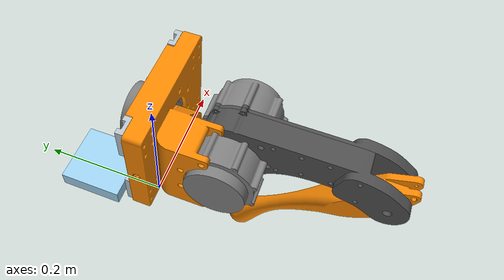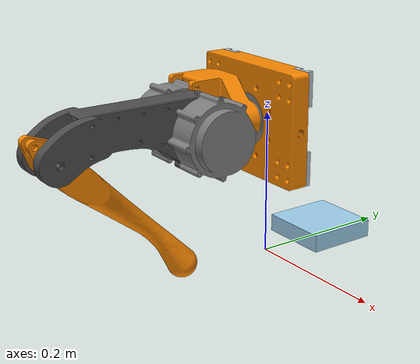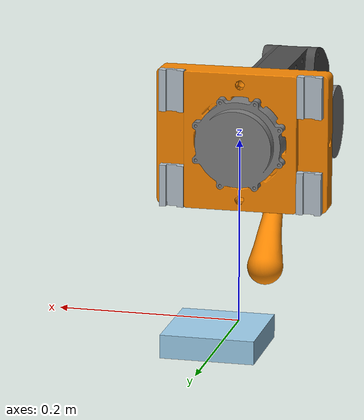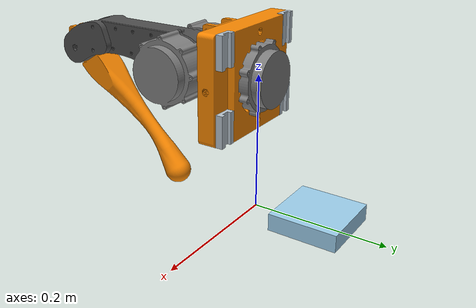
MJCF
<mujoco model="scene">
    <include file="diogenes.xml" />

    <visual>
        <headlight diffuse="0.6 0.6 0.6" ambient="0.3 0.3 0.3" specular="0 0 0" />
        <rgba haze="0.15 0.25 0.35 1" />
        <global azimuth="160" elevation="-20" />
    </visual>

    <asset>
        <texture type="skybox" builtin="gradient" rgb1="0.3 0.5 0.7" rgb2="0 0 0" width="512"
            height="3072" />
        <texture type="2d" name="groundplane" builtin="checker" mark="edge" rgb1="0.2 0.3 0.4"
            rgb2="0.1 0.2 0.3"
            markrgb="0.8 0.8 0.8" width="300" height="300" />
        <material name="groundplane" texture="groundplane" texuniform="true" texrepeat="5 5"
            reflectance="0.2" />
    </asset>

    <worldbody>
        <light pos="0 0 3.5" dir="0 0 -1" directional="true" />
    </worldbody>
</mujoco>

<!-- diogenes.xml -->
<!-- Generated using onshape-to-robot -->
<!-- Onshape https://cad.onshape.com/documents/059a4c781b4bb4d9222a411d/w/7cc560eda411ee8274e44061/e/a6a801257006712d1f1be4b4 -->
<mujoco model="diogenes">
  <compiler angle="radian" meshdir="assets" autolimits="true"/>
  <default>
    <default class="diogenes">
      <joint frictionloss="0.1" armature="0.005"/>
      <position kp="50" dampratio="1"/>
      <default class="visual">
        <geom type="mesh" contype="0" conaffinity="0" group="2"/>
      </default>
      <default class="collision">
        <geom group="3" contype="0" conaffinity="0"/>
      </default>
      <default class="foot">
        <geom group="3" contype="2" conaffinity="1"/>
      </default>
    </default>
  </default>
  <worldbody>
    <!-- Link base_link -->
    <body name="base_link" pos="0 0 0" quat="1 0 0 0" childclass="diogenes">
      <inertial pos="0 0 0" mass="1e-09" fullinertia="1e-09 1e-09 1e-09 0 0 0"/>
      <!-- Part base_link -->
      <geom type="mesh" class="visual" pos="0 0.05 0" quat="1 0 0 0" mesh="base_link" material="base_link_material"/>
      <geom type="mesh" class="collision" pos="0 0.05 0" quat="1 0 0 0" mesh="base_link" material="base_link_material"/>
      <!-- Link leg_mount_assy -->
      <body name="leg_mount_assy" pos="0 0 0.122" quat="0 -1 -0 -0">
        <!-- Joint from base_link to leg_mount_assy -->
        <joint axis="0 0 1" name="slider" type="slide" range="-0.628 0.12200000000000001" armature="0" frictionloss="2.0"/>
        <inertial pos="-0 0.00736167 -0.075" mass="1.61284" fullinertia="0.00250444 0.00530697 0.00350533 -0 1.30755e-05 -0"/>
        <!-- Part leg_mount -->
        <geom type="mesh" class="visual" pos="-0 0.0345 -0.075" quat="0 1 0 0" mesh="leg_mount" material="leg_mount_material"/>
        <geom type="mesh" class="collision" pos="-0 0.0345 -0.075" quat="0 1 0 0" mesh="leg_mount" material="leg_mount_material"/>
        <!-- Part mgn12h_block -->
        <geom type="mesh" class="visual" pos="-0.075 -0.0005 -0.0227" quat="0 0 1 0" mesh="mgn12h_block" material="mgn12h_block_material"/>
        <geom type="mesh" class="collision" pos="-0.075 -0.0005 -0.0227" quat="0 0 1 0" mesh="mgn12h_block" material="mgn12h_block_material"/>
        <!-- Part mgn12h_block_2 -->
        <geom type="mesh" class="visual" pos="0.075 -0.0005 -0.1273" quat="0 0 1 0" mesh="mgn12h_block" material="mgn12h_block_material"/>
        <geom type="mesh" class="collision" pos="0.075 -0.0005 -0.1273" quat="0 0 1 0" mesh="mgn12h_block" material="mgn12h_block_material"/>
        <!-- Part mgn12h_block_3 -->
        <geom type="mesh" class="visual" pos="-0.075 -0.0005 -0.1273" quat="0 0 1 0" mesh="mgn12h_block" material="mgn12h_block_material"/>
        <geom type="mesh" class="collision" pos="-0.075 -0.0005 -0.1273" quat="0 0 1 0" mesh="mgn12h_block" material="mgn12h_block_material"/>
        <!-- Part mgn12h_block_4 -->
        <geom type="mesh" class="visual" pos="0.075 -0.0005 -0.0227" quat="0 0 1 0" mesh="mgn12h_block" material="mgn12h_block_material"/>
        <geom type="mesh" class="collision" pos="0.075 -0.0005 -0.0227" quat="0 0 1 0" mesh="mgn12h_block" material="mgn12h_block_material"/>
        <!-- Part rs03 -->
        <geom type="mesh" class="visual" pos="-0 0.03 -0.075" quat="0 1 0 0" mesh="rs03" material="rs03_material"/>
        <geom type="mesh" class="collision" pos="-0 0.03 -0.075" quat="0 1 0 0" mesh="rs03" material="rs03_material"/>
        <!-- Link hip_assy -->
        <body name="hip_assy" pos="-0 0.03 -0.075" quat="0 -0 0.707107 -0.707107">
          <!-- Joint from leg_mount_assy to hip_assy -->
          <joint axis="0 0 1" name="hip" type="hinge" range="-0.7853981633974483 0.7853981633974483"/>
          <inertial pos="0.0476004 -8.902e-09 -0.0708184" mass="1.3764" fullinertia="0.00260622 0.00219182 0.00147796 -6.38e-10 0.000326127 7.35e-10"/>
          <!-- Part rs03_2 -->
          <geom type="mesh" class="visual" pos="0.025 0 -0.0885" quat="0.5 -0.5 -0.5 -0.5" mesh="rs03" material="rs03_material"/>
          <geom type="mesh" class="collision" pos="0.025 0 -0.0885" quat="0.5 -0.5 -0.5 -0.5" mesh="rs03" material="rs03_material"/>
          <!-- Part hip -->
          <geom type="mesh" class="visual" pos="0 0 -0.0325" quat="0.707107 -0.707107 -0 -0" mesh="hip" material="hip_material"/>
          <geom type="mesh" class="collision" pos="0 0 -0.0325" quat="0.707107 -0.707107 -0 -0" mesh="hip" material="hip_material"/>
          <!-- Link thigh_assy -->
          <body name="thigh_assy" pos="0.025 0 -0.0885" quat="0.5 0.5 0.5 0.5">
            <!-- Joint from hip_assy to thigh_assy -->
            <joint axis="0 0 1" name="thigh" type="hinge" range="-1.5707963267948966 0.26179938779914913"/>
            <inertial pos="0.00310674 -0.0292718 -0.0585998" mass="1.38666" fullinertia="0.00703968 0.0017677 0.00681752 0.000414935 -0.000132505 0.0012537"/>
            <!-- Part left_thigh___l -->
            <geom type="mesh" class="visual" pos="-0 0 -0.0275" quat="0.5 -0.5 -0.5 -0.5" mesh="left_thigh___l" material="left_thigh___l_material"/>
            <geom type="mesh" class="collision" pos="-0 0 -0.0275" quat="0.5 -0.5 -0.5 -0.5" mesh="left_thigh___l" material="left_thigh___l_material"/>
            <!-- Part knee_spacer -->
            <geom type="mesh" class="visual" pos="-0 0 -0.0275" quat="0.5 -0.5 -0.5 -0.5" mesh="knee_spacer" material="knee_spacer_material"/>
            <geom type="mesh" class="collision" pos="-0 0 -0.0275" quat="0.5 -0.5 -0.5 -0.5" mesh="knee_spacer" material="knee_spacer_material"/>
            <!-- Part left_thigh___r -->
            <geom type="mesh" class="visual" pos="-0 0 -0.0275" quat="0.5 -0.5 -0.5 -0.5" mesh="left_thigh___r" material="left_thigh___r_material"/>
            <geom type="mesh" class="collision" pos="-0 0 -0.0275" quat="0.5 -0.5 -0.5 -0.5" mesh="left_thigh___r" material="left_thigh___r_material"/>
            <!-- Part rs03_3 -->
            <geom type="mesh" class="visual" pos="-0 0 -0.045" quat="0.690346 -0.690346 0.153046 -0.153046" mesh="rs03" material="rs03_material"/>
            <geom type="mesh" class="collision" pos="-0 0 -0.045" quat="0.690346 -0.690346 0.153046 -0.153046" mesh="rs03" material="rs03_material"/>
            <!-- Part knee_spacer_2 -->
            <geom type="mesh" class="visual" pos="-0 0 -0.0275" quat="0.5 -0.5 -0.5 -0.5" mesh="knee_spacer__2" material="knee_spacer__2_material"/>
            <geom type="mesh" class="collision" pos="-0 0 -0.0275" quat="0.5 -0.5 -0.5 -0.5" mesh="knee_spacer__2" material="knee_spacer__2_material"/>
            <!-- Link calf_assy -->
            <body name="calf_assy" pos="-0 -0.2 -0.0135" quat="1 0 0 -0">
              <!-- Joint from thigh_assy to calf_assy -->
              <joint axis="0 0 1" name="calf" type="hinge" range="0.0 1.5707963267948966"/>
              <inertial pos="-0.0734277 0.0764228 -0.0139962" mass="0.329345" fullinertia="0.00129077 0.00121983 0.00245382 0.00119389 -6.5392e-08 6.7762e-08"/>
              <!-- Part 606_2rs -->
              <geom type="mesh" class="visual" pos="0 0 -0.014" quat="0.653281 0.270598 0.653281 -0.270598" mesh="606_2rs" material="606_2rs_material"/>
              <geom type="mesh" class="collision" pos="0 0 -0.014" quat="0.653281 0.270598 0.653281 -0.270598" mesh="606_2rs" material="606_2rs_material"/>
              <!-- Part 606_2rs_2 -->
              <geom type="mesh" class="visual" pos="0 0 -0.014" quat="0.653281 0.270598 0.653281 -0.270598" mesh="606_2rs__2" material="606_2rs__2_material"/>
              <geom type="mesh" class="collision" pos="0 0 -0.014" quat="0.653281 0.270598 0.653281 -0.270598" mesh="606_2rs__2" material="606_2rs__2_material"/>
              <!-- Part calf (this is the foot end that should contact the floor) -->
              <geom type="mesh" class="visual" pos="0 0 -0.014" quat="0.653281 0.270598 0.653281 -0.270598" mesh="calf" material="calf_material"/>
              <geom type="mesh" name="foot" class="foot" pos="0 0 -0.014" quat="0.653281 0.270598 0.653281 -0.270598" mesh="calf" material="calf_material"/>
            </body>
          </body>
        </body>
      </body>
    </body>
  </worldbody>
  <asset>
    <mesh file="knee_spacer.stl"/>
    <mesh file="leg_mount.stl"/>
    <mesh file="606_2rs.stl"/>
    <mesh file="base_link.stl"/>
    <mesh file="left_thigh___r.stl"/>
    <mesh file="hip.stl"/>
    <mesh file="606_2rs__2.stl"/>
    <mesh file="knee_spacer__2.stl"/>
    <mesh file="calf.stl"/>
    <mesh file="left_thigh___l.stl"/>
    <mesh file="mgn12h_block.stl"/>
    <mesh file="rs03.stl"/>
    <material name="base_link_material" rgba="0.615686 0.811765 0.929412 1"/>
    <material name="leg_mount_material" rgba="0.972549 0.529412 0.00392157 1"/>
    <material name="mgn12h_block_material" rgba="0.713725 0.760784 0.8 1"/>
    <material name="rs03_material" rgba="0.498039 0.498039 0.498039 1"/>
    <material name="hip_material" rgba="0.972549 0.529412 0.00392157 1"/>
    <material name="left_thigh___l_material" rgba="0.301961 0.301961 0.301961 1"/>
    <material name="knee_spacer_material" rgba="0.972549 0.529412 0.00392157 1"/>
    <material name="left_thigh___r_material" rgba="0.301961 0.301961 0.301961 1"/>
    <material name="knee_spacer__2_material" rgba="0.972549 0.529412 0.00392157 1"/>
    <material name="606_2rs_material" rgba="0.713725 0.760784 0.8 1"/>
    <material name="606_2rs__2_material" rgba="0.713725 0.760784 0.8 1"/>
    <material name="calf_material" rgba="0.972549 0.529412 0.00392157 1"/>
  </asset>
  <actuator>
    <position class="diogenes" name="hip" joint="hip" kp="60.0" kv="4.0" inheritrange="1"/>
    <position class="diogenes" name="thigh" joint="thigh" kp="60.0" kv="4.0" inheritrange="1"/>
    <position class="diogenes" name="calf" joint="calf" kp="60.0" kv="4.0" inheritrange="1"/>
  </actuator>
  <equality/>
</mujoco>
